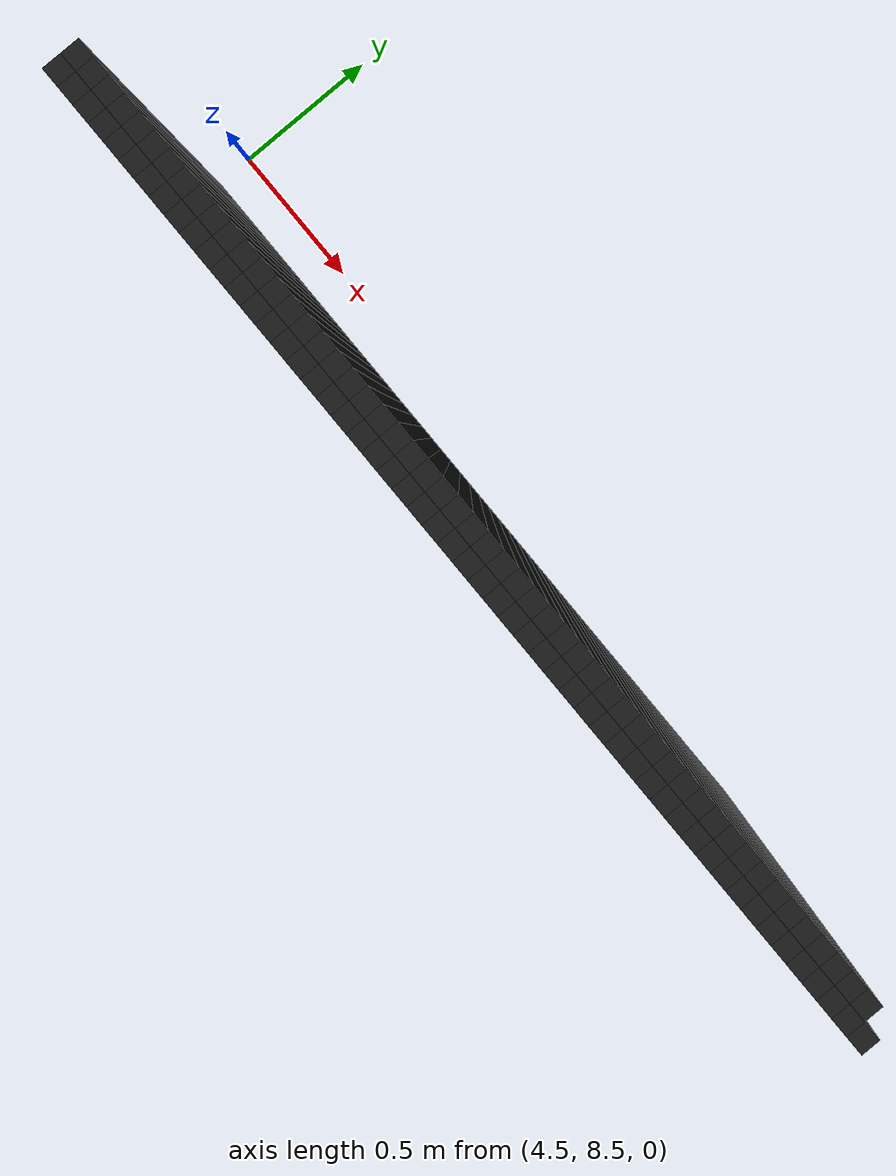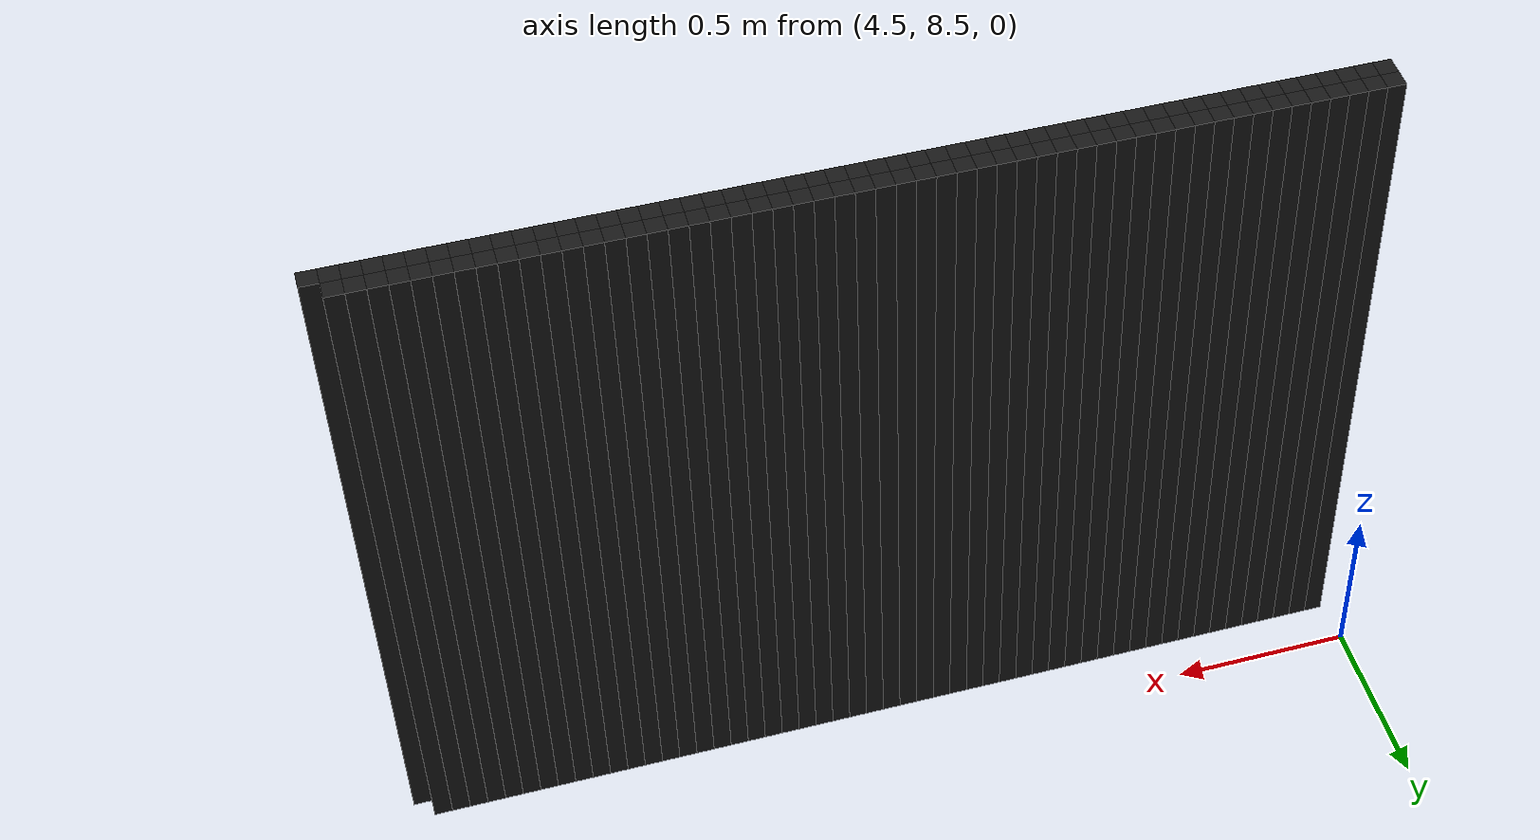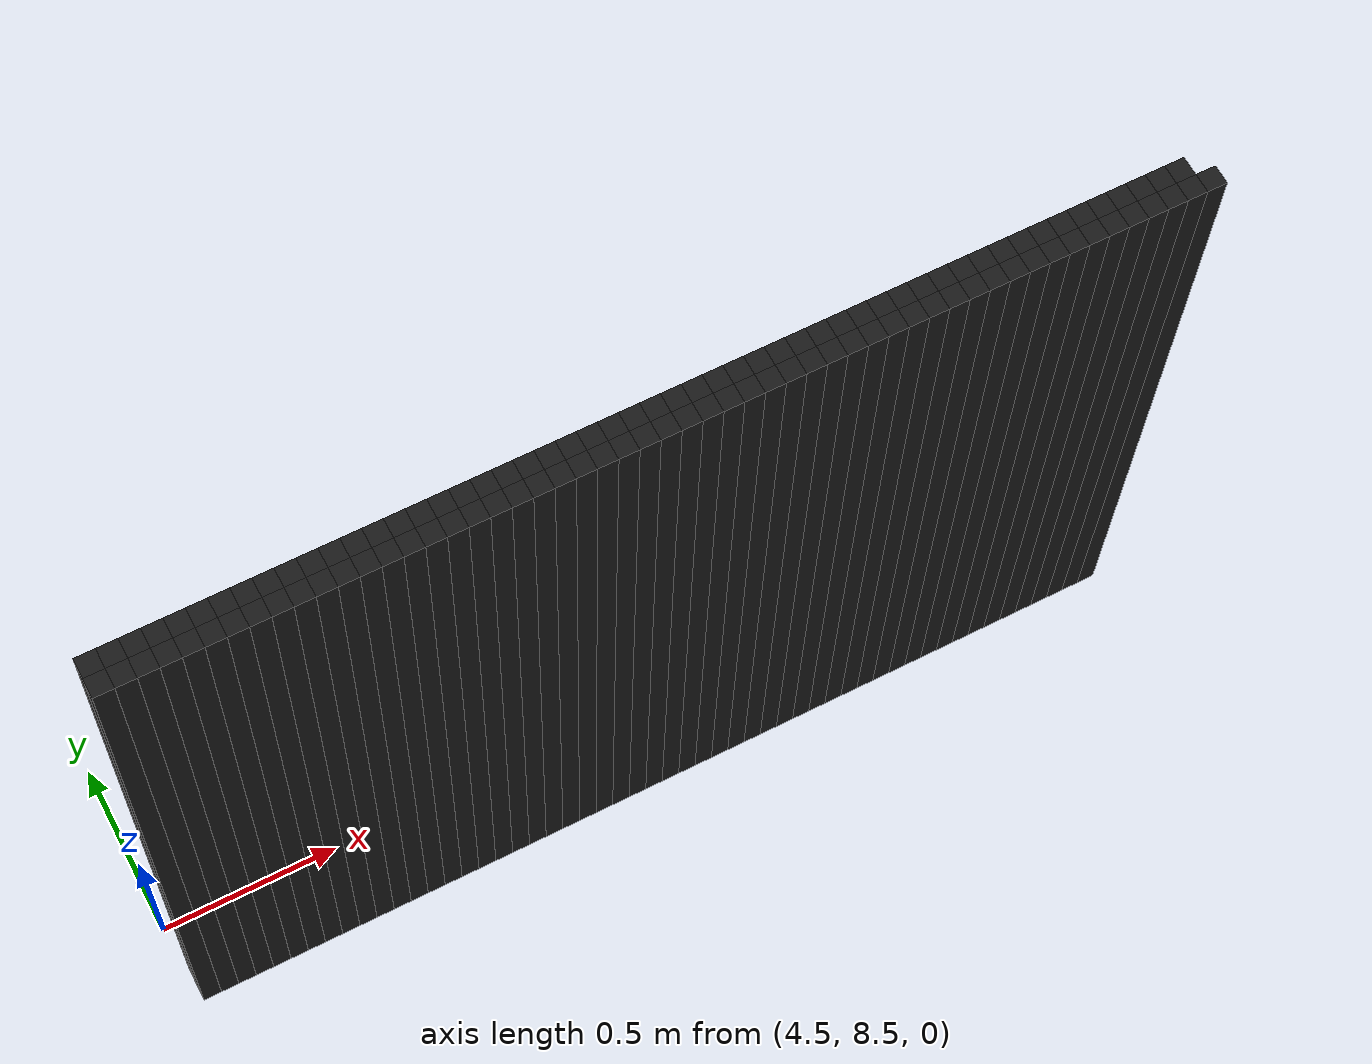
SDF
<sdf version="1.6">
 <model name="obstacle_181_0">
  <pose>4.540000000000001 8.350000000000001 1.0 0 0 0</pose>
  <static>true</static>
  <link name="box_link">
   <collision name="box_collision"><geometry><box><size>0.05 0.05 2.0</size></box></geometry></collision>
   <visual name="box_visual">
    <geometry><box><size>0.05 0.05 2.0</size></box></geometry>
    <material><ambient>0 0 0 1</ambient><diffuse>0.1 0.1 0.1 1</diffuse></material>
   </visual>
  </link>
 </model>
 <model name="obstacle_182_0">
  <pose>4.59 8.350000000000001 1.0 0 0 0</pose>
  <static>true</static>
  <link name="box_link">
   <collision name="box_collision"><geometry><box><size>0.05 0.05 2.0</size></box></geometry></collision>
   <visual name="box_visual">
    <geometry><box><size>0.05 0.05 2.0</size></box></geometry>
    <material><ambient>0 0 0 1</ambient><diffuse>0.1 0.1 0.1 1</diffuse></material>
   </visual>
  </link>
 </model>
 <model name="obstacle_183_0">
  <pose>4.640000000000001 8.350000000000001 1.0 0 0 0</pose>
  <static>true</static>
  <link name="box_link">
   <collision name="box_collision"><geometry><box><size>0.05 0.05 2.0</size></box></geometry></collision>
   <visual name="box_visual">
    <geometry><box><size>0.05 0.05 2.0</size></box></geometry>
    <material><ambient>0 0 0 1</ambient><diffuse>0.1 0.1 0.1 1</diffuse></material>
   </visual>
  </link>
 </model>
 <model name="obstacle_184_0">
  <pose>4.690000000000001 8.350000000000001 1.0 0 0 0</pose>
  <static>true</static>
  <link name="box_link">
   <collision name="box_collision"><geometry><box><size>0.05 0.05 2.0</size></box></geometry></collision>
   <visual name="box_visual">
    <geometry><box><size>0.05 0.05 2.0</size></box></geometry>
    <material><ambient>0 0 0 1</ambient><diffuse>0.1 0.1 0.1 1</diffuse></material>
   </visual>
  </link>
 </model>
 <model name="obstacle_185_0">
  <pose>4.74 8.350000000000001 1.0 0 0 0</pose>
  <static>true</static>
  <link name="box_link">
   <collision name="box_collision"><geometry><box><size>0.05 0.05 2.0</size></box></geometry></collision>
   <visual name="box_visual">
    <geometry><box><size>0.05 0.05 2.0</size></box></geometry>
    <material><ambient>0 0 0 1</ambient><diffuse>0.1 0.1 0.1 1</diffuse></material>
   </visual>
  </link>
 </model>
 <model name="obstacle_186_0">
  <pose>4.790000000000001 8.350000000000001 1.0 0 0 0</pose>
  <static>true</static>
  <link name="box_link">
   <collision name="box_collision"><geometry><box><size>0.05 0.05 2.0</size></box></geometry></collision>
   <visual name="box_visual">
    <geometry><box><size>0.05 0.05 2.0</size></box></geometry>
    <material><ambient>0 0 0 1</ambient><diffuse>0.1 0.1 0.1 1</diffuse></material>
   </visual>
  </link>
 </model>
 <model name="obstacle_187_0">
  <pose>4.84 8.350000000000001 1.0 0 0 0</pose>
  <static>true</static>
  <link name="box_link">
   <collision name="box_collision"><geometry><box><size>0.05 0.05 2.0</size></box></geometry></collision>
   <visual name="box_visual">
    <geometry><box><size>0.05 0.05 2.0</size></box></geometry>
    <material><ambient>0 0 0 1</ambient><diffuse>0.1 0.1 0.1 1</diffuse></material>
   </visual>
  </link>
 </model>
 <model name="obstacle_188_0">
  <pose>4.890000000000001 8.350000000000001 1.0 0 0 0</pose>
  <static>true</static>
  <link name="box_link">
   <collision name="box_collision"><geometry><box><size>0.05 0.05 2.0</size></box></geometry></collision>
   <visual name="box_visual">
    <geometry><box><size>0.05 0.05 2.0</size></box></geometry>
    <material><ambient>0 0 0 1</ambient><diffuse>0.1 0.1 0.1 1</diffuse></material>
   </visual>
  </link>
 </model>
 <model name="obstacle_189_0">
  <pose>4.940000000000001 8.350000000000001 1.0 0 0 0</pose>
  <static>true</static>
  <link name="box_link">
   <collision name="box_collision"><geometry><box><size>0.05 0.05 2.0</size></box></geometry></collision>
   <visual name="box_visual">
    <geometry><box><size>0.05 0.05 2.0</size></box></geometry>
    <material><ambient>0 0 0 1</ambient><diffuse>0.1 0.1 0.1 1</diffuse></material>
   </visual>
  </link>
 </model>
 <model name="obstacle_190_0">
  <pose>4.99 8.350000000000001 1.0 0 0 0</pose>
  <static>true</static>
  <link name="box_link">
   <collision name="box_collision"><geometry><box><size>0.05 0.05 2.0</size></box></geometry></collision>
   <visual name="box_visual">
    <geometry><box><size>0.05 0.05 2.0</size></box></geometry>
    <material><ambient>0 0 0 1</ambient><diffuse>0.1 0.1 0.1 1</diffuse></material>
   </visual>
  </link>
 </model>
 <model name="obstacle_191_0">
  <pose>5.040000000000001 8.350000000000001 1.0 0 0 0</pose>
  <static>true</static>
  <link name="box_link">
   <collision name="box_collision"><geometry><box><size>0.05 0.05 2.0</size></box></geometry></collision>
   <visual name="box_visual">
    <geometry><box><size>0.05 0.05 2.0</size></box></geometry>
    <material><ambient>0 0 0 1</ambient><diffuse>0.1 0.1 0.1 1</diffuse></material>
   </visual>
  </link>
 </model>
 <model name="obstacle_192_0">
  <pose>5.090000000000002 8.350000000000001 1.0 0 0 0</pose>
  <static>true</static>
  <link name="box_link">
   <collision name="box_collision"><geometry><box><size>0.05 0.05 2.0</size></box></geometry></collision>
   <visual name="box_visual">
    <geometry><box><size>0.05 0.05 2.0</size></box></geometry>
    <material><ambient>0 0 0 1</ambient><diffuse>0.1 0.1 0.1 1</diffuse></material>
   </visual>
  </link>
 </model>
 <model name="obstacle_193_0">
  <pose>5.140000000000001 8.350000000000001 1.0 0 0 0</pose>
  <static>true</static>
  <link name="box_link">
   <collision name="box_collision"><geometry><box><size>0.05 0.05 2.0</size></box></geometry></collision>
   <visual name="box_visual">
    <geometry><box><size>0.05 0.05 2.0</size></box></geometry>
    <material><ambient>0 0 0 1</ambient><diffuse>0.1 0.1 0.1 1</diffuse></material>
   </visual>
  </link>
 </model>
 <model name="obstacle_194_0">
  <pose>5.190000000000001 8.350000000000001 1.0 0 0 0</pose>
  <static>true</static>
  <link name="box_link">
   <collision name="box_collision"><geometry><box><size>0.05 0.05 2.0</size></box></geometry></collision>
   <visual name="box_visual">
    <geometry><box><size>0.05 0.05 2.0</size></box></geometry>
    <material><ambient>0 0 0 1</ambient><diffuse>0.1 0.1 0.1 1</diffuse></material>
   </visual>
  </link>
 </model>
 <model name="obstacle_195_0">
  <pose>5.24 8.350000000000001 1.0 0 0 0</pose>
  <static>true</static>
  <link name="box_link">
   <collision name="box_collision"><geometry><box><size>0.05 0.05 2.0</size></box></geometry></collision>
   <visual name="box_visual">
    <geometry><box><size>0.05 0.05 2.0</size></box></geometry>
    <material><ambient>0 0 0 1</ambient><diffuse>0.1 0.1 0.1 1</diffuse></material>
   </visual>
  </link>
 </model>
 <model name="obstacle_196_0">
  <pose>5.290000000000001 8.350000000000001 1.0 0 0 0</pose>
  <static>true</static>
  <link name="box_link">
   <collision name="box_collision"><geometry><box><size>0.05 0.05 2.0</size></box></geometry></collision>
   <visual name="box_visual">
    <geometry><box><size>0.05 0.05 2.0</size></box></geometry>
    <material><ambient>0 0 0 1</ambient><diffuse>0.1 0.1 0.1 1</diffuse></material>
   </visual>
  </link>
 </model>
 <model name="obstacle_197_0">
  <pose>5.340000000000002 8.350000000000001 1.0 0 0 0</pose>
  <static>true</static>
  <link name="box_link">
   <collision name="box_collision"><geometry><box><size>0.05 0.05 2.0</size></box></geometry></collision>
   <visual name="box_visual">
    <geometry><box><size>0.05 0.05 2.0</size></box></geometry>
    <material><ambient>0 0 0 1</ambient><diffuse>0.1 0.1 0.1 1</diffuse></material>
   </visual>
  </link>
 </model>
 <model name="obstacle_198_0">
  <pose>5.390000000000001 8.350000000000001 1.0 0 0 0</pose>
  <static>true</static>
  <link name="box_link">
   <collision name="box_collision"><geometry><box><size>0.05 0.05 2.0</size></box></geometry></collision>
   <visual name="box_visual">
    <geometry><box><size>0.05 0.05 2.0</size></box></geometry>
    <material><ambient>0 0 0 1</ambient><diffuse>0.1 0.1 0.1 1</diffuse></material>
   </visual>
  </link>
 </model>
 <model name="obstacle_199_0">
  <pose>5.440000000000001 8.350000000000001 1.0 0 0 0</pose>
  <static>true</static>
  <link name="box_link">
   <collision name="box_collision"><geometry><box><size>0.05 0.05 2.0</size></box></geometry></collision>
   <visual name="box_visual">
    <geometry><box><size>0.05 0.05 2.0</size></box></geometry>
    <material><ambient>0 0 0 1</ambient><diffuse>0.1 0.1 0.1 1</diffuse></material>
   </visual>
  </link>
 </model>
 <model name="obstacle_200_0">
  <pose>5.49 8.350000000000001 1.0 0 0 0</pose>
  <static>true</static>
  <link name="box_link">
   <collision name="box_collision"><geometry><box><size>0.05 0.05 2.0</size></box></geometry></collision>
   <visual name="box_visual">
    <geometry><box><size>0.05 0.05 2.0</size></box></geometry>
    <material><ambient>0 0 0 1</ambient><diffuse>0.1 0.1 0.1 1</diffuse></material>
   </visual>
  </link>
 </model>
 <model name="obstacle_201_0">
  <pose>5.540000000000001 8.350000000000001 1.0 0 0 0</pose>
  <static>true</static>
  <link name="box_link">
   <collision name="box_collision"><geometry><box><size>0.05 0.05 2.0</size></box></geometry></collision>
   <visual name="box_visual">
    <geometry><box><size>0.05 0.05 2.0</size></box></geometry>
    <material><ambient>0 0 0 1</ambient><diffuse>0.1 0.1 0.1 1</diffuse></material>
   </visual>
  </link>
 </model>
 <model name="obstacle_202_0">
  <pose>5.590000000000002 8.350000000000001 1.0 0 0 0</pose>
  <static>true</static>
  <link name="box_link">
   <collision name="box_collision"><geometry><box><size>0.05 0.05 2.0</size></box></geometry></collision>
   <visual name="box_visual">
    <geometry><box><size>0.05 0.05 2.0</size></box></geometry>
    <material><ambient>0 0 0 1</ambient><diffuse>0.1 0.1 0.1 1</diffuse></material>
   </visual>
  </link>
 </model>
 <model name="obstacle_203_0">
  <pose>5.640000000000001 8.350000000000001 1.0 0 0 0</pose>
  <static>true</static>
  <link name="box_link">
   <collision name="box_collision"><geometry><box><size>0.05 0.05 2.0</size></box></geometry></collision>
   <visual name="box_visual">
    <geometry><box><size>0.05 0.05 2.0</size></box></geometry>
    <material><ambient>0 0 0 1</ambient><diffuse>0.1 0.1 0.1 1</diffuse></material>
   </visual>
  </link>
 </model>
 <model name="obstacle_204_0">
  <pose>5.690000000000001 8.350000000000001 1.0 0 0 0</pose>
  <static>true</static>
  <link name="box_link">
   <collision name="box_collision"><geometry><box><size>0.05 0.05 2.0</size></box></geometry></collision>
   <visual name="box_visual">
    <geometry><box><size>0.05 0.05 2.0</size></box></geometry>
    <material><ambient>0 0 0 1</ambient><diffuse>0.1 0.1 0.1 1</diffuse></material>
   </visual>
  </link>
 </model>
 <model name="obstacle_205_0">
  <pose>5.74 8.350000000000001 1.0 0 0 0</pose>
  <static>true</static>
  <link name="box_link">
   <collision name="box_collision"><geometry><box><size>0.05 0.05 2.0</size></box></geometry></collision>
   <visual name="box_visual">
    <geometry><box><size>0.05 0.05 2.0</size></box></geometry>
    <material><ambient>0 0 0 1</ambient><diffuse>0.1 0.1 0.1 1</diffuse></material>
   </visual>
  </link>
 </model>
 <model name="obstacle_206_0">
  <pose>5.790000000000001 8.350000000000001 1.0 0 0 0</pose>
  <static>true</static>
  <link name="box_link">
   <collision name="box_collision"><geometry><box><size>0.05 0.05 2.0</size></box></geometry></collision>
   <visual name="box_visual">
    <geometry><box><size>0.05 0.05 2.0</size></box></geometry>
    <material><ambient>0 0 0 1</ambient><diffuse>0.1 0.1 0.1 1</diffuse></material>
   </visual>
  </link>
 </model>
 <model name="obstacle_207_0">
  <pose>5.840000000000002 8.350000000000001 1.0 0 0 0</pose>
  <static>true</static>
  <link name="box_link">
   <collision name="box_collision"><geometry><box><size>0.05 0.05 2.0</size></box></geometry></collision>
   <visual name="box_visual">
    <geometry><box><size>0.05 0.05 2.0</size></box></geometry>
    <material><ambient>0 0 0 1</ambient><diffuse>0.1 0.1 0.1 1</diffuse></material>
   </visual>
  </link>
 </model>
 <model name="obstacle_208_0">
  <pose>5.890000000000001 8.350000000000001 1.0 0 0 0</pose>
  <static>true</static>
  <link name="box_link">
   <collision name="box_collision"><geometry><box><size>0.05 0.05 2.0</size></box></geometry></collision>
   <visual name="box_visual">
    <geometry><box><size>0.05 0.05 2.0</size></box></geometry>
    <material><ambient>0 0 0 1</ambient><diffuse>0.1 0.1 0.1 1</diffuse></material>
   </visual>
  </link>
 </model>
 <model name="obstacle_209_0">
  <pose>5.940000000000001 8.350000000000001 1.0 0 0 0</pose>
  <static>true</static>
  <link name="box_link">
   <collision name="box_collision"><geometry><box><size>0.05 0.05 2.0</size></box></geometry></collision>
   <visual name="box_visual">
    <geometry><box><size>0.05 0.05 2.0</size></box></geometry>
    <material><ambient>0 0 0 1</ambient><diffuse>0.1 0.1 0.1 1</diffuse></material>
   </visual>
  </link>
 </model>
 <model name="obstacle_210_0">
  <pose>5.99 8.350000000000001 1.0 0 0 0</pose>
  <static>true</static>
  <link name="box_link">
   <collision name="box_collision"><geometry><box><size>0.05 0.05 2.0</size></box></geometry></collision>
   <visual name="box_visual">
    <geometry><box><size>0.05 0.05 2.0</size></box></geometry>
    <material><ambient>0 0 0 1</ambient><diffuse>0.1 0.1 0.1 1</diffuse></material>
   </visual>
  </link>
 </model>
 <model name="obstacle_211_0">
  <pose>6.040000000000001 8.350000000000001 1.0 0 0 0</pose>
  <static>true</static>
  <link name="box_link">
   <collision name="box_collision"><geometry><box><size>0.05 0.05 2.0</size></box></geometry></collision>
   <visual name="box_visual">
    <geometry><box><size>0.05 0.05 2.0</size></box></geometry>
    <material><ambient>0 0 0 1</ambient><diffuse>0.1 0.1 0.1 1</diffuse></material>
   </visual>
  </link>
 </model>
 <model name="obstacle_212_0">
  <pose>6.090000000000002 8.350000000000001 1.0 0 0 0</pose>
  <static>true</static>
  <link name="box_link">
   <collision name="box_collision"><geometry><box><size>0.05 0.05 2.0</size></box></geometry></collision>
   <visual name="box_visual">
    <geometry><box><size>0.05 0.05 2.0</size></box></geometry>
    <material><ambient>0 0 0 1</ambient><diffuse>0.1 0.1 0.1 1</diffuse></material>
   </visual>
  </link>
 </model>
 <model name="obstacle_213_0">
  <pose>6.140000000000001 8.350000000000001 1.0 0 0 0</pose>
  <static>true</static>
  <link name="box_link">
   <collision name="box_collision"><geometry><box><size>0.05 0.05 2.0</size></box></geometry></collision>
   <visual name="box_visual">
    <geometry><box><size>0.05 0.05 2.0</size></box></geometry>
    <material><ambient>0 0 0 1</ambient><diffuse>0.1 0.1 0.1 1</diffuse></material>
   </visual>
  </link>
 </model>
 <model name="obstacle_214_0">
  <pose>6.190000000000001 8.350000000000001 1.0 0 0 0</pose>
  <static>true</static>
  <link name="box_link">
   <collision name="box_collision"><geometry><box><size>0.05 0.05 2.0</size></box></geometry></collision>
   <visual name="box_visual">
    <geometry><box><size>0.05 0.05 2.0</size></box></geometry>
    <material><ambient>0 0 0 1</ambient><diffuse>0.1 0.1 0.1 1</diffuse></material>
   </visual>
  </link>
 </model>
 <model name="obstacle_215_0">
  <pose>6.24 8.350000000000001 1.0 0 0 0</pose>
  <static>true</static>
  <link name="box_link">
   <collision name="box_collision"><geometry><box><size>0.05 0.05 2.0</size></box></geometry></collision>
   <visual name="box_visual">
    <geometry><box><size>0.05 0.05 2.0</size></box></geometry>
    <material><ambient>0 0 0 1</ambient><diffuse>0.1 0.1 0.1 1</diffuse></material>
   </visual>
  </link>
 </model>
 <model name="obstacle_216_0">
  <pose>6.290000000000001 8.350000000000001 1.0 0 0 0</pose>
  <static>true</static>
  <link name="box_link">
   <collision name="box_collision"><geometry><box><size>0.05 0.05 2.0</size></box></geometry></collision>
   <visual name="box_visual">
    <geometry><box><size>0.05 0.05 2.0</size></box></geometry>
    <material><ambient>0 0 0 1</ambient><diffuse>0.1 0.1 0.1 1</diffuse></material>
   </visual>
  </link>
 </model>
 <model name="obstacle_217_0">
  <pose>6.340000000000002 8.350000000000001 1.0 0 0 0</pose>
  <static>true</static>
  <link name="box_link">
   <collision name="box_collision"><geometry><box><size>0.05 0.05 2.0</size></box></geometry></collision>
   <visual name="box_visual">
    <geometry><box><size>0.05 0.05 2.0</size></box></geometry>
    <material><ambient>0 0 0 1</ambient><diffuse>0.1 0.1 0.1 1</diffuse></material>
   </visual>
  </link>
 </model>
 <model name="obstacle_218_0">
  <pose>6.390000000000001 8.350000000000001 1.0 0 0 0</pose>
  <static>true</static>
  <link name="box_link">
   <collision name="box_collision"><geometry><box><size>0.05 0.05 2.0</size></box></geometry></collision>
   <visual name="box_visual">
    <geometry><box><size>0.05 0.05 2.0</size></box></geometry>
    <material><ambient>0 0 0 1</ambient><diffuse>0.1 0.1 0.1 1</diffuse></material>
   </visual>
  </link>
 </model>
 <model name="obstacle_219_0">
  <pose>6.440000000000001 8.350000000000001 1.0 0 0 0</pose>
  <static>true</static>
  <link name="box_link">
   <collision name="box_collision"><geometry><box><size>0.05 0.05 2.0</size></box></geometry></collision>
   <visual name="box_visual">
    <geometry><box><size>0.05 0.05 2.0</size></box></geometry>
    <material><ambient>0 0 0 1</ambient><diffuse>0.1 0.1 0.1 1</diffuse></material>
   </visual>
  </link>
 </model>
 <model name="obstacle_220_0">
  <pose>6.49 8.350000000000001 1.0 0 0 0</pose>
  <static>true</static>
  <link name="box_link">
   <collision name="box_collision"><geometry><box><size>0.05 0.05 2.0</size></box></geometry></collision>
   <visual name="box_visual">
    <geometry><box><size>0.05 0.05 2.0</size></box></geometry>
    <material><ambient>0 0 0 1</ambient><diffuse>0.1 0.1 0.1 1</diffuse></material>
   </visual>
  </link>
 </model>
 <model name="obstacle_221_0">
  <pose>6.540000000000001 8.350000000000001 1.0 0 0 0</pose>
  <static>true</static>
  <link name="box_link">
   <collision name="box_collision"><geometry><box><size>0.05 0.05 2.0</size></box></geometry></collision>
   <visual name="box_visual">
    <geometry><box><size>0.05 0.05 2.0</size></box></geometry>
    <material><ambient>0 0 0 1</ambient><diffuse>0.1 0.1 0.1 1</diffuse></material>
   </visual>
  </link>
 </model>
 <model name="obstacle_222_0">
  <pose>6.590000000000002 8.350000000000001 1.0 0 0 0</pose>
  <static>true</static>
  <link name="box_link">
   <collision name="box_collision"><geometry><box><size>0.05 0.05 2.0</size></box></geometry></collision>
   <visual name="box_visual">
    <geometry><box><size>0.05 0.05 2.0</size></box></geometry>
    <material><ambient>0 0 0 1</ambient><diffuse>0.1 0.1 0.1 1</diffuse></material>
   </visual>
  </link>
 </model>
 <model name="obstacle_223_0">
  <pose>6.640000000000001 8.350000000000001 1.0 0 0 0</pose>
  <static>true</static>
  <link name="box_link">
   <collision name="box_collision"><geometry><box><size>0.05 0.05 2.0</size></box></geometry></collision>
   <visual name="box_visual">
    <geometry><box><size>0.05 0.05 2.0</size></box></geometry>
    <material><ambient>0 0 0 1</ambient><diffuse>0.1 0.1 0.1 1</diffuse></material>
   </visual>
  </link>
 </model>
 <model name="obstacle_224_0">
  <pose>6.690000000000001 8.350000000000001 1.0 0 0 0</pose>
  <static>true</static>
  <link name="box_link">
   <collision name="box_collision"><geometry><box><size>0.05 0.05 2.0</size></box></geometry></collision>
   <visual name="box_visual">
    <geometry><box><size>0.05 0.05 2.0</size></box></geometry>
    <material><ambient>0 0 0 1</ambient><diffuse>0.1 0.1 0.1 1</diffuse></material>
   </visual>
  </link>
 </model>
 <model name="obstacle_225_0">
  <pose>6.74 8.350000000000001 1.0 0 0 0</pose>
  <static>true</static>
  <link name="box_link">
   <collision name="box_collision"><geometry><box><size>0.05 0.05 2.0</size></box></geometry></collision>
   <visual name="box_visual">
    <geometry><box><size>0.05 0.05 2.0</size></box></geometry>
    <material><ambient>0 0 0 1</ambient><diffuse>0.1 0.1 0.1 1</diffuse></material>
   </visual>
  </link>
 </model>
 <model name="obstacle_226_0">
  <pose>6.790000000000001 8.350000000000001 1.0 0 0 0</pose>
  <static>true</static>
  <link name="box_link">
   <collision name="box_collision"><geometry><box><size>0.05 0.05 2.0</size></box></geometry></collision>
   <visual name="box_visual">
    <geometry><box><size>0.05 0.05 2.0</size></box></geometry>
    <material><ambient>0 0 0 1</ambient><diffuse>0.1 0.1 0.1 1</diffuse></material>
   </visual>
  </link>
 </model>
 <model name="obstacle_227_0">
  <pose>6.840000000000002 8.350000000000001 1.0 0 0 0</pose>
  <static>true</static>
  <link name="box_link">
   <collision name="box_collision"><geometry><box><size>0.05 0.05 2.0</size></box></geometry></collision>
   <visual name="box_visual">
    <geometry><box><size>0.05 0.05 2.0</size></box></geometry>
    <material><ambient>0 0 0 1</ambient><diffuse>0.1 0.1 0.1 1</diffuse></material>
   </visual>
  </link>
 </model>
 <model name="obstacle_228_0">
  <pose>6.890000000000001 8.350000000000001 1.0 0 0 0</pose>
  <static>true</static>
  <link name="box_link">
   <collision name="box_collision"><geometry><box><size>0.05 0.05 2.0</size></box></geometry></collision>
   <visual name="box_visual">
    <geometry><box><size>0.05 0.05 2.0</size></box></geometry>
    <material><ambient>0 0 0 1</ambient><diffuse>0.1 0.1 0.1 1</diffuse></material>
   </visual>
  </link>
 </model>
 <model name="obstacle_229_0">
  <pose>6.940000000000001 8.350000000000001 1.0 0 0 0</pose>
  <static>true</static>
  <link name="box_link">
   <collision name="box_collision"><geometry><box><size>0.05 0.05 2.0</size></box></geometry></collision>
   <visual name="box_visual">
    <geometry><box><size>0.05 0.05 2.0</size></box></geometry>
    <material><ambient>0 0 0 1</ambient><diffuse>0.1 0.1 0.1 1</diffuse></material>
   </visual>
  </link>
 </model>
 <model name="obstacle_230_0">
  <pose>6.99 8.350000000000001 1.0 0 0 0</pose>
  <static>true</static>
  <link name="box_link">
   <collision name="box_collision"><geometry><box><size>0.05 0.05 2.0</size></box></geometry></collision>
   <visual name="box_visual">
    <geometry><box><size>0.05 0.05 2.0</size></box></geometry>
    <material><ambient>0 0 0 1</ambient><diffuse>0.1 0.1 0.1 1</diffuse></material>
   </visual>
  </link>
 </model>
 <model name="obstacle_231_0">
  <pose>7.040000000000001 8.350000000000001 1.0 0 0 0</pose>
  <static>true</static>
  <link name="box_link">
   <collision name="box_collision"><geometry><box><size>0.05 0.05 2.0</size></box></geometry></collision>
   <visual name="box_visual">
    <geometry><box><size>0.05 0.05 2.0</size></box></geometry>
    <material><ambient>0 0 0 1</ambient><diffuse>0.1 0.1 0.1 1</diffuse></material>
   </visual>
  </link>
 </model>
 <model name="obstacle_232_0">
  <pose>7.090000000000002 8.350000000000001 1.0 0 0 0</pose>
  <static>true</static>
  <link name="box_link">
   <collision name="box_collision"><geometry><box><size>0.05 0.05 2.0</size></box></geometry></collision>
   <visual name="box_visual">
    <geometry><box><size>0.05 0.05 2.0</size></box></geometry>
    <material><ambient>0 0 0 1</ambient><diffuse>0.1 0.1 0.1 1</diffuse></material>
   </visual>
  </link>
 </model>
 <model name="obstacle_233_0">
  <pose>7.140000000000001 8.350000000000001 1.0 0 0 0</pose>
  <static>true</static>
  <link name="box_link">
   <collision name="box_collision"><geometry><box><size>0.05 0.05 2.0</size></box></geometry></collision>
   <visual name="box_visual">
    <geometry><box><size>0.05 0.05 2.0</size></box></geometry>
    <material><ambient>0 0 0 1</ambient><diffuse>0.1 0.1 0.1 1</diffuse></material>
   </visual>
  </link>
 </model>
 <model name="obstacle_181_1">
  <pose>4.540000000000001 8.3 1.0 0 0 0</pose>
  <static>true</static>
  <link name="box_link">
   <collision name="box_collision"><geometry><box><size>0.05 0.05 2.0</size></box></geometry></collision>
   <visual name="box_visual">
    <geometry><box><size>0.05 0.05 2.0</size></box></geometry>
    <material><ambient>0 0 0 1</ambient><diffuse>0.1 0.1 0.1 1</diffuse></material>
   </visual>
  </link>
 </model>
 <model name="obstacle_182_1">
  <pose>4.59 8.3 1.0 0 0 0</pose>
  <static>true</static>
  <link name="box_link">
   <collision name="box_collision"><geometry><box><size>0.05 0.05 2.0</size></box></geometry></collision>
   <visual name="box_visual">
    <geometry><box><size>0.05 0.05 2.0</size></box></geometry>
    <material><ambient>0 0 0 1</ambient><diffuse>0.1 0.1 0.1 1</diffuse></material>
   </visual>
  </link>
 </model>
 <model name="obstacle_183_1">
  <pose>4.640000000000001 8.3 1.0 0 0 0</pose>
  <static>true</static>
  <link name="box_link">
   <collision name="box_collision"><geometry><box><size>0.05 0.05 2.0</size></box></geometry></collision>
   <visual name="box_visual">
    <geometry><box><size>0.05 0.05 2.0</size></box></geometry>
    <material><ambient>0 0 0 1</ambient><diffuse>0.1 0.1 0.1 1</diffuse></material>
   </visual>
  </link>
 </model>
 <model name="obstacle_184_1">
  <pose>4.690000000000001 8.3 1.0 0 0 0</pose>
  <static>true</static>
  <link name="box_link">
   <collision name="box_collision"><geometry><box><size>0.05 0.05 2.0</size></box></geometry></collision>
   <visual name="box_visual">
    <geometry><box><size>0.05 0.05 2.0</size></box></geometry>
    <material><ambient>0 0 0 1</ambient><diffuse>0.1 0.1 0.1 1</diffuse></material>
   </visual>
  </link>
 </model>
 <model name="obstacle_185_1">
  <pose>4.74 8.3 1.0 0 0 0</pose>
  <static>true</static>
  <link name="box_link">
   <collision name="box_collision"><geometry><box><size>0.05 0.05 2.0</size></box></geometry></collision>
   <visual name="box_visual">
    <geometry><box><size>0.05 0.05 2.0</size></box></geometry>
    <material><ambient>0 0 0 1</ambient><diffuse>0.1 0.1 0.1 1</diffuse></material>
   </visual>
  </link>
 </model>
 <model name="obstacle_186_1">
  <pose>4.790000000000001 8.3 1.0 0 0 0</pose>
  <static>true</static>
  <link name="box_link">
   <collision name="box_collision"><geometry><box><size>0.05 0.05 2.0</size></box></geometry></collision>
   <visual name="box_visual">
    <geometry><box><size>0.05 0.05 2.0</size></box></geometry>
    <material><ambient>0 0 0 1</ambient><diffuse>0.1 0.1 0.1 1</diffuse></material>
   </visual>
  </link>
 </model>
 <model name="obstacle_187_1">
  <pose>4.84 8.3 1.0 0 0 0</pose>
  <static>true</static>
  <link name="box_link">
   <collision name="box_collision"><geometry><box><size>0.05 0.05 2.0</size></box></geometry></collision>
   <visual name="box_visual">
    <geometry><box><size>0.05 0.05 2.0</size></box></geometry>
    <material><ambient>0 0 0 1</ambient><diffuse>0.1 0.1 0.1 1</diffuse></material>
   </visual>
  </link>
 </model>
 <model name="obstacle_188_1">
  <pose>4.890000000000001 8.3 1.0 0 0 0</pose>
  <static>true</static>
  <link name="box_link">
   <collision name="box_collision"><geometry><box><size>0.05 0.05 2.0</size></box></geometry></collision>
   <visual name="box_visual">
    <geometry><box><size>0.05 0.05 2.0</size></box></geometry>
    <material><ambient>0 0 0 1</ambient><diffuse>0.1 0.1 0.1 1</diffuse></material>
   </visual>
  </link>
 </model>
 <model name="obstacle_189_1">
  <pose>4.940000000000001 8.3 1.0 0 0 0</pose>
  <static>true</static>
  <link name="box_link">
   <collision name="box_collision"><geometry><box><size>0.05 0.05 2.0</size></box></geometry></collision>
   <visual name="box_visual">
    <geometry><box><size>0.05 0.05 2.0</size></box></geometry>
    <material><ambient>0 0 0 1</ambient><diffuse>0.1 0.1 0.1 1</diffuse></material>
   </visual>
  </link>
 </model>
 <model name="obstacle_190_1">
  <pose>4.99 8.3 1.0 0 0 0</pose>
  <static>true</static>
  <link name="box_link">
   <collision name="box_collision"><geometry><box><size>0.05 0.05 2.0</size></box></geometry></collision>
   <visual name="box_visual">
    <geometry><box><size>0.05 0.05 2.0</size></box></geometry>
    <material><ambient>0 0 0 1</ambient><diffuse>0.1 0.1 0.1 1</diffuse></material>
   </visual>
  </link>
 </model>
 <model name="obstacle_191_1">
  <pose>5.040000000000001 8.3 1.0 0 0 0</pose>
  <static>true</static>
  <link name="box_link">
   <collision name="box_collision"><geometry><box><size>0.05 0.05 2.0</size></box></geometry></collision>
   <visual name="box_visual">
    <geometry><box><size>0.05 0.05 2.0</size></box></geometry>
    <material><ambient>0 0 0 1</ambient><diffuse>0.1 0.1 0.1 1</diffuse></material>
   </visual>
  </link>
 </model>
 <model name="obstacle_192_1">
  <pose>5.090000000000002 8.3 1.0 0 0 0</pose>
  <static>true</static>
  <link name="box_link">
   <collision name="box_collision"><geometry><box><size>0.05 0.05 2.0</size></box></geometry></collision>
   <visual name="box_visual">
    <geometry><box><size>0.05 0.05 2.0</size></box></geometry>
    <material><ambient>0 0 0 1</ambient><diffuse>0.1 0.1 0.1 1</diffuse></material>
   </visual>
  </link>
 </model>
 <model name="obstacle_193_1">
  <pose>5.140000000000001 8.3 1.0 0 0 0</pose>
  <static>true</static>
  <link name="box_link">
   <collision name="box_collision"><geometry><box><size>0.05 0.05 2.0</size></box></geometry></collision>
   <visual name="box_visual">
    <geometry><box><size>0.05 0.05 2.0</size></box></geometry>
    <material><ambient>0 0 0 1</ambient><diffuse>0.1 0.1 0.1 1</diffuse></material>
   </visual>
  </link>
 </model>
 <model name="obstacle_194_1">
  <pose>5.190000000000001 8.3 1.0 0 0 0</pose>
  <static>true</static>
  <link name="box_link">
   <collision name="box_collision"><geometry><box><size>0.05 0.05 2.0</size></box></geometry></collision>
   <visual name="box_visual">
    <geometry><box><size>0.05 0.05 2.0</size></box></geometry>
    <material><ambient>0 0 0 1</ambient><diffuse>0.1 0.1 0.1 1</diffuse></material>
   </visual>
  </link>
 </model>
 <model name="obstacle_195_1">
  <pose>5.24 8.3 1.0 0 0 0</pose>
  <static>true</static>
  <link name="box_link">
   <collision name="box_collision"><geometry><box><size>0.05 0.05 2.0</size></box></geometry></collision>
   <visual name="box_visual">
    <geometry><box><size>0.05 0.05 2.0</size></box></geometry>
    <material><ambient>0 0 0 1</ambient><diffuse>0.1 0.1 0.1 1</diffuse></material>
   </visual>
  </link>
 </model>
 <model name="obstacle_196_1">
  <pose>5.290000000000001 8.3 1.0 0 0 0</pose>
  <static>true</static>
  <link name="box_link">
   <collision name="box_collision"><geometry><box><size>0.05 0.05 2.0</size></box></geometry></collision>
   <visual name="box_visual">
    <geometry><box><size>0.05 0.05 2.0</size></box></geometry>
    <material><ambient>0 0 0 1</ambient><diffuse>0.1 0.1 0.1 1</diffuse></material>
   </visual>
  </link>
 </model>
 <model name="obstacle_197_1">
  <pose>5.340000000000002 8.3 1.0 0 0 0</pose>
  <static>true</static>
  <link name="box_link">
   <collision name="box_collision"><geometry><box><size>0.05 0.05 2.0</size></box></geometry></collision>
   <visual name="box_visual">
    <geometry><box><size>0.05 0.05 2.0</size></box></geometry>
    <material><ambient>0 0 0 1</ambient><diffuse>0.1 0.1 0.1 1</diffuse></material>
   </visual>
  </link>
 </model>
 <model name="obstacle_198_1">
  <pose>5.390000000000001 8.3 1.0 0 0 0</pose>
  <static>true</static>
  <link name="box_link">
   <collision name="box_collision"><geometry><box><size>0.05 0.05 2.0</size></box></geometry></collision>
   <visual name="box_visual">
    <geometry><box><size>0.05 0.05 2.0</size></box></geometry>
    <material><ambient>0 0 0 1</ambient><diffuse>0.1 0.1 0.1 1</diffuse></material>
   </visual>
  </link>
 </model>
 <model name="obstacle_199_1">
  <pose>5.440000000000001 8.3 1.0 0 0 0</pose>
  <static>true</static>
  <link name="box_link">
   <collision name="box_collision"><geometry><box><size>0.05 0.05 2.0</size></box></geometry></collision>
   <visual name="box_visual">
    <geometry><box><size>0.05 0.05 2.0</size></box></geometry>
    <material><ambient>0 0 0 1</ambient><diffuse>0.1 0.1 0.1 1</diffuse></material>
   </visual>
  </link>
 </model>
 <model name="obstacle_200_1">
  <pose>5.49 8.3 1.0 0 0 0</pose>
  <static>true</static>
  <link name="box_link">
   <collision name="box_collision"><geometry><box><size>0.05 0.05 2.0</size></box></geometry></collision>
   <visual name="box_visual">
    <geometry><box><size>0.05 0.05 2.0</size></box></geometry>
    <material><ambient>0 0 0 1</ambient><diffuse>0.1 0.1 0.1 1</diffuse></material>
   </visual>
  </link>
 </model>
 <model name="obstacle_201_1">
  <pose>5.540000000000001 8.3 1.0 0 0 0</pose>
  <static>true</static>
  <link name="box_link">
   <collision name="box_collision"><geometry><box><size>0.05 0.05 2.0</size></box></geometry></collision>
   <visual name="box_visual">
    <geometry><box><size>0.05 0.05 2.0</size></box></geometry>
    <material><ambient>0 0 0 1</ambient><diffuse>0.1 0.1 0.1 1</diffuse></material>
   </visual>
  </link>
 </model>
 <model name="obstacle_202_1">
  <pose>5.590000000000002 8.3 1.0 0 0 0</pose>
  <static>true</static>
  <link name="box_link">
   <collision name="box_collision"><geometry><box><size>0.05 0.05 2.0</size></box></geometry></collision>
   <visual name="box_visual">
    <geometry><box><size>0.05 0.05 2.0</size></box></geometry>
    <material><ambient>0 0 0 1</ambient><diffuse>0.1 0.1 0.1 1</diffuse></material>
   </visual>
  </link>
 </model>
 <model name="obstacle_203_1">
  <pose>5.640000000000001 8.3 1.0 0 0 0</pose>
  <static>true</static>
  <link name="box_link">
   <collision name="box_collision"><geometry><box><size>0.05 0.05 2.0</size></box></geometry></collision>
   <visual name="box_visual">
    <geometry><box><size>0.05 0.05 2.0</size></box></geometry>
    <material><ambient>0 0 0 1</ambient><diffuse>0.1 0.1 0.1 1</diffuse></material>
   </visual>
  </link>
 </model>
 <model name="obstacle_204_1">
  <pose>5.690000000000001 8.3 1.0 0 0 0</pose>
  <static>true</static>
  <link name="box_link">
   <collision name="box_collision"><geometry><box><size>0.05 0.05 2.0</size></box></geometry></collision>
   <visual name="box_visual">
    <geometry><box><size>0.05 0.05 2.0</size></box></geometry>
    <material><ambient>0 0 0 1</ambient><diffuse>0.1 0.1 0.1 1</diffuse></material>
   </visual>
  </link>
 </model>
 <model name="obstacle_205_1">
  <pose>5.74 8.3 1.0 0 0 0</pose>
  <static>true</static>
  <link name="box_link">
   <collision name="box_collision"><geometry><box><size>0.05 0.05 2.0</size></box></geometry></collision>
   <visual name="box_visual">
    <geometry><box><size>0.05 0.05 2.0</size></box></geometry>
    <material><ambient>0 0 0 1</ambient><diffuse>0.1 0.1 0.1 1</diffuse></material>
   </visual>
  </link>
 </model>
 <model name="obstacle_206_1">
  <pose>5.790000000000001 8.3 1.0 0 0 0</pose>
  <static>true</static>
  <link name="box_link">
   <collision name="box_collision"><geometry><box><size>0.05 0.05 2.0</size></box></geometry></collision>
   <visual name="box_visual">
    <geometry><box><size>0.05 0.05 2.0</size></box></geometry>
    <material><ambient>0 0 0 1</ambient><diffuse>0.1 0.1 0.1 1</diffuse></material>
   </visual>
  </link>
 </model>
 <model name="obstacle_207_1">
  <pose>5.840000000000002 8.3 1.0 0 0 0</pose>
  <static>true</static>
  <link name="box_link">
   <collision name="box_collision"><geometry><box><size>0.05 0.05 2.0</size></box></geometry></collision>
   <visual name="box_visual">
    <geometry><box><size>0.05 0.05 2.0</size></box></geometry>
    <material><ambient>0 0 0 1</ambient><diffuse>0.1 0.1 0.1 1</diffuse></material>
   </visual>
  </link>
 </model>
 <model name="obstacle_208_1">
  <pose>5.890000000000001 8.3 1.0 0 0 0</pose>
  <static>true</static>
  <link name="box_link">
   <collision name="box_collision"><geometry><box><size>0.05 0.05 2.0</size></box></geometry></collision>
   <visual name="box_visual">
    <geometry><box><size>0.05 0.05 2.0</size></box></geometry>
    <material><ambient>0 0 0 1</ambient><diffuse>0.1 0.1 0.1 1</diffuse></material>
   </visual>
  </link>
 </model>
 <model name="obstacle_209_1">
  <pose>5.940000000000001 8.3 1.0 0 0 0</pose>
  <static>true</static>
  <link name="box_link">
   <collision name="box_collision"><geometry><box><size>0.05 0.05 2.0</size></box></geometry></collision>
   <visual name="box_visual">
    <geometry><box><size>0.05 0.05 2.0</size></box></geometry>
    <material><ambient>0 0 0 1</ambient><diffuse>0.1 0.1 0.1 1</diffuse></material>
   </visual>
  </link>
 </model>
 <model name="obstacle_210_1">
  <pose>5.99 8.3 1.0 0 0 0</pose>
  <static>true</static>
  <link name="box_link">
   <collision name="box_collision"><geometry><box><size>0.05 0.05 2.0</size></box></geometry></collision>
   <visual name="box_visual">
    <geometry><box><size>0.05 0.05 2.0</size></box></geometry>
    <material><ambient>0 0 0 1</ambient><diffuse>0.1 0.1 0.1 1</diffuse></material>
   </visual>
  </link>
 </model>
 <model name="obstacle_211_1">
  <pose>6.040000000000001 8.3 1.0 0 0 0</pose>
  <static>true</static>
  <link name="box_link">
   <collision name="box_collision"><geometry><box><size>0.05 0.05 2.0</size></box></geometry></collision>
   <visual name="box_visual">
    <geometry><box><size>0.05 0.05 2.0</size></box></geometry>
    <material><ambient>0 0 0 1</ambient><diffuse>0.1 0.1 0.1 1</diffuse></material>
   </visual>
  </link>
 </model>
 <model name="obstacle_212_1">
  <pose>6.090000000000002 8.3 1.0 0 0 0</pose>
  <static>true</static>
  <link name="box_link">
   <collision name="box_collision"><geometry><box><size>0.05 0.05 2.0</size></box></geometry></collision>
   <visual name="box_visual">
    <geometry><box><size>0.05 0.05 2.0</size></box></geometry>
    <material><ambient>0 0 0 1</ambient><diffuse>0.1 0.1 0.1 1</diffuse></material>
   </visual>
  </link>
 </model>
 <model name="obstacle_213_1">
  <pose>6.140000000000001 8.3 1.0 0 0 0</pose>
  <static>true</static>
  <link name="box_link">
   <collision name="box_collision"><geometry><box><size>0.05 0.05 2.0</size></box></geometry></collision>
   <visual name="box_visual">
    <geometry><box><size>0.05 0.05 2.0</size></box></geometry>
    <material><ambient>0 0 0 1</ambient><diffuse>0.1 0.1 0.1 1</diffuse></material>
   </visual>
  </link>
 </model>
 <model name="obstacle_214_1">
  <pose>6.190000000000001 8.3 1.0 0 0 0</pose>
  <static>true</static>
  <link name="box_link">
   <collision name="box_collision"><geometry><box><size>0.05 0.05 2.0</size></box></geometry></collision>
   <visual name="box_visual">
    <geometry><box><size>0.05 0.05 2.0</size></box></geometry>
    <material><ambient>0 0 0 1</ambient><diffuse>0.1 0.1 0.1 1</diffuse></material>
   </visual>
  </link>
 </model>
 <model name="obstacle_215_1">
  <pose>6.24 8.3 1.0 0 0 0</pose>
  <static>true</static>
  <link name="box_link">
   <collision name="box_collision"><geometry><box><size>0.05 0.05 2.0</size></box></geometry></collision>
   <visual name="box_visual">
    <geometry><box><size>0.05 0.05 2.0</size></box></geometry>
    <material><ambient>0 0 0 1</ambient><diffuse>0.1 0.1 0.1 1</diffuse></material>
   </visual>
  </link>
 </model>
 <model name="obstacle_216_1">
  <pose>6.290000000000001 8.3 1.0 0 0 0</pose>
  <static>true</static>
  <link name="box_link">
   <collision name="box_collision"><geometry><box><size>0.05 0.05 2.0</size></box></geometry></collision>
   <visual name="box_visual">
    <geometry><box><size>0.05 0.05 2.0</size></box></geometry>
    <material><ambient>0 0 0 1</ambient><diffuse>0.1 0.1 0.1 1</diffuse></material>
   </visual>
  </link>
 </model>
 <model name="obstacle_217_1">
  <pose>6.340000000000002 8.3 1.0 0 0 0</pose>
  <static>true</static>
  <link name="box_link">
   <collision name="box_collision"><geometry><box><size>0.05 0.05 2.0</size></box></geometry></collision>
   <visual name="box_visual">
    <geometry><box><size>0.05 0.05 2.0</size></box></geometry>
    <material><ambient>0 0 0 1</ambient><diffuse>0.1 0.1 0.1 1</diffuse></material>
   </visual>
  </link>
 </model>
 <model name="obstacle_218_1">
  <pose>6.390000000000001 8.3 1.0 0 0 0</pose>
  <static>true</static>
  <link name="box_link">
   <collision name="box_collision"><geometry><box><size>0.05 0.05 2.0</size></box></geometry></collision>
   <visual name="box_visual">
    <geometry><box><size>0.05 0.05 2.0</size></box></geometry>
    <material><ambient>0 0 0 1</ambient><diffuse>0.1 0.1 0.1 1</diffuse></material>
   </visual>
  </link>
 </model>
 <model name="obstacle_219_1">
  <pose>6.440000000000001 8.3 1.0 0 0 0</pose>
  <static>true</static>
  <link name="box_link">
   <collision name="box_collision"><geometry><box><size>0.05 0.05 2.0</size></box></geometry></collision>
   <visual name="box_visual">
    <geometry><box><size>0.05 0.05 2.0</size></box></geometry>
    <material><ambient>0 0 0 1</ambient><diffuse>0.1 0.1 0.1 1</diffuse></material>
   </visual>
  </link>
 </model>
 <model name="obstacle_220_1">
  <pose>6.49 8.3 1.0 0 0 0</pose>
  <static>true</static>
  <link name="box_link">
   <collision name="box_collision"><geometry><box><size>0.05 0.05 2.0</size></box></geometry></collision>
   <visual name="box_visual">
    <geometry><box><size>0.05 0.05 2.0</size></box></geometry>
    <material><ambient>0 0 0 1</ambient><diffuse>0.1 0.1 0.1 1</diffuse></material>
   </visual>
  </link>
 </model>
 <model name="obstacle_221_1">
  <pose>6.540000000000001 8.3 1.0 0 0 0</pose>
  <static>true</static>
  <link name="box_link">
   <collision name="box_collision"><geometry><box><size>0.05 0.05 2.0</size></box></geometry></collision>
   <visual name="box_visual">
    <geometry><box><size>0.05 0.05 2.0</size></box></geometry>
    <material><ambient>0 0 0 1</ambient><diffuse>0.1 0.1 0.1 1</diffuse></material>
   </visual>
  </link>
 </model>
 <model name="obstacle_222_1">
  <pose>6.590000000000002 8.3 1.0 0 0 0</pose>
  <static>true</static>
  <link name="box_link">
   <collision name="box_collision"><geometry><box><size>0.05 0.05 2.0</size></box></geometry></collision>
   <visual name="box_visual">
    <geometry><box><size>0.05 0.05 2.0</size></box></geometry>
    <material><ambient>0 0 0 1</ambient><diffuse>0.1 0.1 0.1 1</diffuse></material>
   </visual>
  </link>
 </model>
 <model name="obstacle_223_1">
  <pose>6.640000000000001 8.3 1.0 0 0 0</pose>
  <static>true</static>
  <link name="box_link">
   <collision name="box_collision"><geometry><box><size>0.05 0.05 2.0</size></box></geometry></collision>
   <visual name="box_visual">
    <geometry><box><size>0.05 0.05 2.0</size></box></geometry>
    <material><ambient>0 0 0 1</ambient><diffuse>0.1 0.1 0.1 1</diffuse></material>
   </visual>
  </link>
 </model>
 <model name="obstacle_224_1">
  <pose>6.690000000000001 8.3 1.0 0 0 0</pose>
  <static>true</static>
  <link name="box_link">
   <collision name="box_collision"><geometry><box><size>0.05 0.05 2.0</size></box></geometry></collision>
   <visual name="box_visual">
    <geometry><box><size>0.05 0.05 2.0</size></box></geometry>
    <material><ambient>0 0 0 1</ambient><diffuse>0.1 0.1 0.1 1</diffuse></material>
   </visual>
  </link>
 </model>
 <model name="obstacle_225_1">
  <pose>6.74 8.3 1.0 0 0 0</pose>
  <static>true</static>
  <link name="box_link">
   <collision name="box_collision"><geometry><box><size>0.05 0.05 2.0</size></box></geometry></collision>
   <visual name="box_visual">
    <geometry><box><size>0.05 0.05 2.0</size></box></geometry>
    <material><ambient>0 0 0 1</ambient><diffuse>0.1 0.1 0.1 1</diffuse></material>
   </visual>
  </link>
 </model>
 <model name="obstacle_226_1">
  <pose>6.790000000000001 8.3 1.0 0 0 0</pose>
  <static>true</static>
  <link name="box_link">
   <collision name="box_collision"><geometry><box><size>0.05 0.05 2.0</size></box></geometry></collision>
   <visual name="box_visual">
    <geometry><box><size>0.05 0.05 2.0</size></box></geometry>
    <material><ambient>0 0 0 1</ambient><diffuse>0.1 0.1 0.1 1</diffuse></material>
   </visual>
  </link>
 </model>
 <model name="obstacle_227_1">
  <pose>6.840000000000002 8.3 1.0 0 0 0</pose>
  <static>true</static>
  <link name="box_link">
   <collision name="box_collision"><geometry><box><size>0.05 0.05 2.0</size></box></geometry></collision>
   <visual name="box_visual">
    <geometry><box><size>0.05 0.05 2.0</size></box></geometry>
    <material><ambient>0 0 0 1</ambient><diffuse>0.1 0.1 0.1 1</diffuse></material>
   </visual>
  </link>
 </model>
 <model name="obstacle_228_1">
  <pose>6.890000000000001 8.3 1.0 0 0 0</pose>
  <static>true</static>
  <link name="box_link">
   <collision name="box_collision"><geometry><box><size>0.05 0.05 2.0</size></box></geometry></collision>
   <visual name="box_visual">
    <geometry><box><size>0.05 0.05 2.0</size></box></geometry>
    <material><ambient>0 0 0 1</ambient><diffuse>0.1 0.1 0.1 1</diffuse></material>
   </visual>
  </link>
 </model>
 <model name="obstacle_229_1">
  <pose>6.940000000000001 8.3 1.0 0 0 0</pose>
  <static>true</static>
  <link name="box_link">
   <collision name="box_collision"><geometry><box><size>0.05 0.05 2.0</size></box></geometry></collision>
   <visual name="box_visual">
    <geometry><box><size>0.05 0.05 2.0</size></box></geometry>
    <material><ambient>0 0 0 1</ambient><diffuse>0.1 0.1 0.1 1</diffuse></material>
   </visual>
  </link>
 </model>
 <model name="obstacle_230_1">
  <pose>6.99 8.3 1.0 0 0 0</pose>
  <static>true</static>
  <link name="box_link">
   <collision name="box_collision"><geometry><box><size>0.05 0.05 2.0</size></box></geometry></collision>
   <visual name="box_visual">
    <geometry><box><size>0.05 0.05 2.0</size></box></geometry>
    <material><ambient>0 0 0 1</ambient><diffuse>0.1 0.1 0.1 1</diffuse></material>
   </visual>
  </link>
 </model>
 <model name="obstacle_231_1">
  <pose>7.040000000000001 8.3 1.0 0 0 0</pose>
  <static>true</static>
  <link name="box_link">
   <collision name="box_collision"><geometry><box><size>0.05 0.05 2.0</size></box></geometry></collision>
   <visual name="box_visual">
    <geometry><box><size>0.05 0.05 2.0</size></box></geometry>
    <material><ambient>0 0 0 1</ambient><diffuse>0.1 0.1 0.1 1</diffuse></material>
   </visual>
  </link>
 </model>
 <model name="obstacle_232_1">
  <pose>7.090000000000002 8.3 1.0 0 0 0</pose>
  <static>true</static>
  <link name="box_link">
   <collision name="box_collision"><geometry><box><size>0.05 0.05 2.0</size></box></geometry></collision>
   <visual name="box_visual">
    <geometry><box><size>0.05 0.05 2.0</size></box></geometry>
    <material><ambient>0 0 0 1</ambient><diffuse>0.1 0.1 0.1 1</diffuse></material>
   </visual>
  </link>
 </model>
 <model name="obstacle_233_1">
  <pose>7.140000000000001 8.3 1.0 0 0 0</pose>
  <static>true</static>
  <link name="box_link">
   <collision name="box_collision"><geometry><box><size>0.05 0.05 2.0</size></box></geometry></collision>
   <visual name="box_visual">
    <geometry><box><size>0.05 0.05 2.0</size></box></geometry>
    <material><ambient>0 0 0 1</ambient><diffuse>0.1 0.1 0.1 1</diffuse></material>
   </visual>
  </link>
 </model>
 <model name="obstacle_234_1">
  <pose>7.190000000000001 8.3 1.0 0 0 0</pose>
  <static>true</static>
  <link name="box_link">
   <collision name="box_collision"><geometry><box><size>0.05 0.05 2.0</size></box></geometry></collision>
   <visual name="box_visual">
    <geometry><box><size>0.05 0.05 2.0</size></box></geometry>
    <material><ambient>0 0 0 1</ambient><diffuse>0.1 0.1 0.1 1</diffuse></material>
   </visual>
  </link>
 </model>
</sdf>
